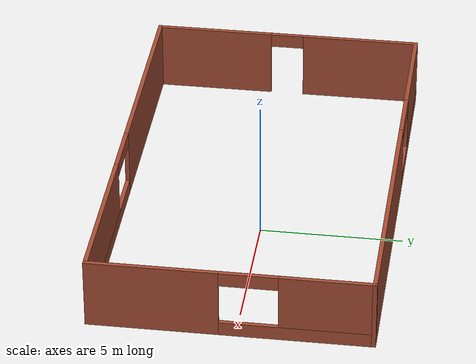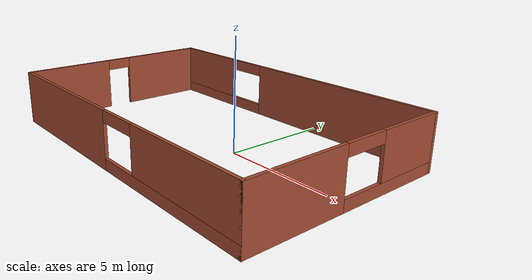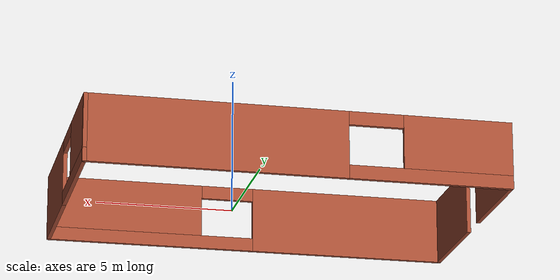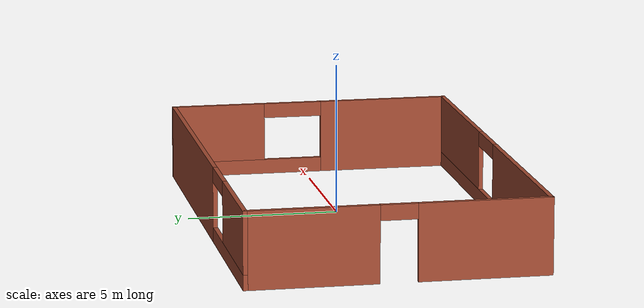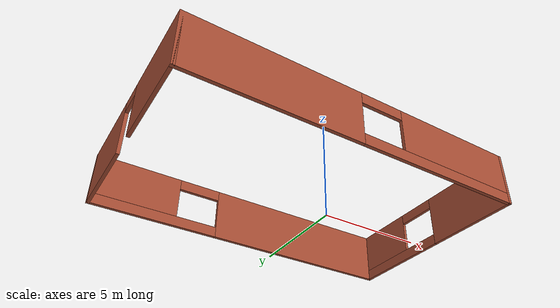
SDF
<?xml version='1.0'?>
<sdf version='1.6'>
  <model name='mybuilding'>
    <pose frame=''>-1.56724 -0.210953 0 0 -0 0</pose>
    <link name='Wall_3'>
      <pose frame=''>0 -4.8 0 0 -0 0</pose>
      <visual name='Wall_3_Visual_0'>
        <pose frame=''>-3.97859 0 1.25 0 -0 0</pose>
        <geometry>
          <box>
            <size>7.54281 0.15 2.5</size>
          </box>
        </geometry>
        <material>
          <script>
            <uri>file://media/materials/scripts/gazebo.material</uri>
            <name>Gazebo/Bricks</name>
          </script>
          <ambient>1 1 1 1</ambient>
        </material>
      </visual>
      <collision name='Wall_3_Collision_0'>
        <geometry>
          <box>
            <size>7.54281 0.15 2.5</size>
          </box>
        </geometry>
        <pose frame=''>-3.97859 0 1.25 0 -0 0</pose>
      </collision>
      <visual name='Wall_3_Visual_1'>
        <pose frame=''>3.77141 0 0.25 0 -0 0</pose>
        <geometry>
          <box>
            <size>7.95719 0.15 0.5</size>
          </box>
        </geometry>
        <material>
          <script>
            <uri>file://media/materials/scripts/gazebo.material</uri>
            <name>Gazebo/Bricks</name>
          </script>
          <ambient>1 1 1 1</ambient>
        </material>
      </visual>
      <collision name='Wall_3_Collision_1'>
        <geometry>
          <box>
            <size>7.95719 0.15 0.5</size>
          </box>
        </geometry>
        <pose frame=''>3.77141 0 0.25 0 -0 0</pose>
      </collision>
      <visual name='Wall_3_Visual_2'>
        <pose frame=''>4.77141 0 1.5 0 -0 0</pose>
        <geometry>
          <box>
            <size>5.95719 0.15 2</size>
          </box>
        </geometry>
        <material>
          <script>
            <uri>file://media/materials/scripts/gazebo.material</uri>
            <name>Gazebo/Bricks</name>
          </script>
          <ambient>1 1 1 1</ambient>
        </material>
      </visual>
      <collision name='Wall_3_Collision_2'>
        <geometry>
          <box>
            <size>5.95719 0.15 2</size>
          </box>
        </geometry>
        <pose frame=''>4.77141 0 1.5 0 -0 0</pose>
      </collision>
      <visual name='Wall_3_Visual_3'>
        <pose frame=''>0.792814 0 2.25 0 -0 0</pose>
        <geometry>
          <box>
            <size>2 0.15 0.5</size>
          </box>
        </geometry>
        <material>
          <script>
            <uri>file://media/materials/scripts/gazebo.material</uri>
            <name>Gazebo/Bricks</name>
          </script>
          <ambient>1 1 1 1</ambient>
        </material>
      </visual>
      <collision name='Wall_3_Collision_3'>
        <geometry>
          <box>
            <size>2 0.15 0.5</size>
          </box>
        </geometry>
        <pose frame=''>0.792814 0 2.25 0 -0 0</pose>
      </collision>
    </link>
    <link name='Wall_4'>
      <pose frame=''>7.675 0 0 0 -0 1.5708</pose>
      <visual name='Wall_4_Visual_0'>
        <pose frame=''>-2.62217 0 1.25 0 -0 0</pose>
        <geometry>
          <box>
            <size>4.50566 0.15 2.5</size>
          </box>
        </geometry>
        <material>
          <script>
            <uri>file://media/materials/scripts/gazebo.material</uri>
            <name>Gazebo/Bricks</name>
          </script>
          <ambient>1 1 1 1</ambient>
        </material>
      </visual>
      <collision name='Wall_4_Collision_0'>
        <geometry>
          <box>
            <size>4.50566 0.15 2.5</size>
          </box>
        </geometry>
        <pose frame=''>-2.62217 0 1.25 0 -0 0</pose>
      </collision>
      <visual name='Wall_4_Visual_1'>
        <pose frame=''>2.25283 0 0.25 0 -0 0</pose>
        <geometry>
          <box>
            <size>5.24434 0.15 0.5</size>
          </box>
        </geometry>
        <material>
          <script>
            <uri>file://media/materials/scripts/gazebo.material</uri>
            <name>Gazebo/Bricks</name>
          </script>
          <ambient>1 1 1 1</ambient>
        </material>
      </visual>
      <collision name='Wall_4_Collision_1'>
        <geometry>
          <box>
            <size>5.24434 0.15 0.5</size>
          </box>
        </geometry>
        <pose frame=''>2.25283 0 0.25 0 -0 0</pose>
      </collision>
      <visual name='Wall_4_Visual_2'>
        <pose frame=''>3.25283 0 1.5 0 -0 0</pose>
        <geometry>
          <box>
            <size>3.24434 0.15 2</size>
          </box>
        </geometry>
        <material>
          <script>
            <uri>file://media/materials/scripts/gazebo.material</uri>
            <name>Gazebo/Bricks</name>
          </script>
          <ambient>1 1 1 1</ambient>
        </material>
      </visual>
      <collision name='Wall_4_Collision_2'>
        <geometry>
          <box>
            <size>3.24434 0.15 2</size>
          </box>
        </geometry>
        <pose frame=''>3.25283 0 1.5 0 -0 0</pose>
      </collision>
      <visual name='Wall_4_Visual_3'>
        <pose frame=''>0.630664 0 2.25 0 -0 0</pose>
        <geometry>
          <box>
            <size>2 0.15 0.5</size>
          </box>
        </geometry>
        <material>
          <script>
            <uri>file://media/materials/scripts/gazebo.material</uri>
            <name>Gazebo/Bricks</name>
          </script>
          <ambient>1 1 1 1</ambient>
        </material>
      </visual>
      <collision name='Wall_4_Collision_3'>
        <geometry>
          <box>
            <size>2 0.15 0.5</size>
          </box>
        </geometry>
        <pose frame=''>0.630664 0 2.25 0 -0 0</pose>
      </collision>
    </link>
    <link name='Wall_5'>
      <pose frame=''>0 4.8 0 0 -0 3.14159</pose>
      <visual name='Wall_5_Visual_0'>
        <pose frame=''>-3.01147 0 1.25 0 -0 0</pose>
        <geometry>
          <box>
            <size>9.47706 0.15 2.5</size>
          </box>
        </geometry>
        <material>
          <script>
            <uri>file://media/materials/scripts/gazebo.material</uri>
            <name>Gazebo/Bricks</name>
          </script>
          <ambient>1 1 1 1</ambient>
        </material>
      </visual>
      <collision name='Wall_5_Collision_0'>
        <geometry>
          <box>
            <size>9.47706 0.15 2.5</size>
          </box>
        </geometry>
        <pose frame=''>-3.01147 0 1.25 0 -0 0</pose>
      </collision>
      <visual name='Wall_5_Visual_1'>
        <pose frame=''>4.73853 0 0.25 0 -0 0</pose>
        <geometry>
          <box>
            <size>6.02294 0.15 0.5</size>
          </box>
        </geometry>
        <material>
          <script>
            <uri>file://media/materials/scripts/gazebo.material</uri>
            <name>Gazebo/Bricks</name>
          </script>
          <ambient>1 1 1 1</ambient>
        </material>
      </visual>
      <collision name='Wall_5_Collision_1'>
        <geometry>
          <box>
            <size>6.02294 0.15 0.5</size>
          </box>
        </geometry>
        <pose frame=''>4.73853 0 0.25 0 -0 0</pose>
      </collision>
      <visual name='Wall_5_Visual_2'>
        <pose frame=''>5.73853 0 1.5 0 -0 0</pose>
        <geometry>
          <box>
            <size>4.02294 0.15 2</size>
          </box>
        </geometry>
        <material>
          <script>
            <uri>file://media/materials/scripts/gazebo.material</uri>
            <name>Gazebo/Bricks</name>
          </script>
          <ambient>1 1 1 1</ambient>
        </material>
      </visual>
      <collision name='Wall_5_Collision_2'>
        <geometry>
          <box>
            <size>4.02294 0.15 2</size>
          </box>
        </geometry>
        <pose frame=''>5.73853 0 1.5 0 -0 0</pose>
      </collision>
      <visual name='Wall_5_Visual_3'>
        <pose frame=''>2.72706 0 2.25 0 -0 0</pose>
        <geometry>
          <box>
            <size>2 0.15 0.5</size>
          </box>
        </geometry>
        <material>
          <script>
            <uri>file://media/materials/scripts/gazebo.material</uri>
            <name>Gazebo/Bricks</name>
          </script>
          <ambient>1 1 1 1</ambient>
        </material>
      </visual>
      <collision name='Wall_5_Collision_3'>
        <geometry>
          <box>
            <size>2 0.15 0.5</size>
          </box>
        </geometry>
        <pose frame=''>2.72706 0 2.25 0 -0 0</pose>
      </collision>
    </link>
    <link name='Wall_6'>
      <pose frame=''>-7.675 0 0 0 0 -1.5708</pose>
      <visual name='Wall_6_Visual_0'>
        <pose frame=''>-2.74107 0 1.25 0 -0 0</pose>
        <geometry>
          <box>
            <size>4.26786 0.15 2.5</size>
          </box>
        </geometry>
        <material>
          <script>
            <uri>file://media/materials/scripts/gazebo.material</uri>
            <name>Gazebo/Bricks</name>
          </script>
          <ambient>1 1 1 1</ambient>
        </material>
      </visual>
      <collision name='Wall_6_Collision_0'>
        <geometry>
          <box>
            <size>4.26786 0.15 2.5</size>
          </box>
        </geometry>
        <pose frame=''>-2.74107 0 1.25 0 -0 0</pose>
      </collision>
      <visual name='Wall_6_Visual_1'>
        <pose frame=''>2.73393 0 1.25 0 -0 0</pose>
        <geometry>
          <box>
            <size>4.28214 0.15 2.5</size>
          </box>
        </geometry>
        <material>
          <script>
            <uri>file://media/materials/scripts/gazebo.material</uri>
            <name>Gazebo/Bricks</name>
          </script>
          <ambient>1 1 1 1</ambient>
        </material>
      </visual>
      <collision name='Wall_6_Collision_1'>
        <geometry>
          <box>
            <size>4.28214 0.15 2.5</size>
          </box>
        </geometry>
        <pose frame=''>2.73393 0 1.25 0 -0 0</pose>
      </collision>
      <visual name='Wall_6_Visual_2'>
        <pose frame=''>-0.007144 0 2.25 0 -0 0</pose>
        <geometry>
          <box>
            <size>1.2 0.15 0.5</size>
          </box>
        </geometry>
        <material>
          <script>
            <uri>file://media/materials/scripts/gazebo.material</uri>
            <name>Gazebo/Bricks</name>
          </script>
          <ambient>1 1 1 1</ambient>
        </material>
      </visual>
      <collision name='Wall_6_Collision_2'>
        <geometry>
          <box>
            <size>1.2 0.15 0.5</size>
          </box>
        </geometry>
        <pose frame=''>-0.007144 0 2.25 0 -0 0</pose>
      </collision>
    </link>
    <static>1</static>
  </model>
</sdf>
